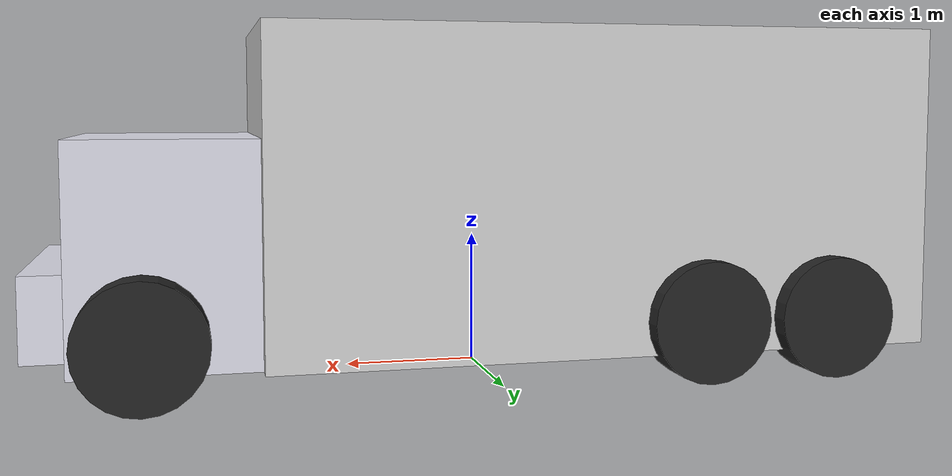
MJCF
<mujoco>
  <!-- Delivery truck model -->
  <asset>
    <material name="truck_cab" rgba="0.9 0.9 0.95 1"/>
    <material name="truck_cargo" rgba="0.85 0.85 0.85 1"/>
    <material name="truck_wheel" rgba="0.15 0.15 0.15 1"/>
  </asset>

  <worldbody>
    <body name="truck_root">
      <!-- Cab -->
      <geom name="truck_cab" type="box" size="1.0 1.0 0.8" pos="2.0 0 1.0" material="truck_cab"/>
      <geom name="truck_hood" type="box" size="0.5 0.9 0.3" pos="2.8 0 0.6" material="truck_cab"/>

      <!-- Cargo area -->
      <geom name="truck_cargo" type="box" size="2.5 1.15 1.2" pos="-0.8 0 1.4" material="truck_cargo"/>

      <!-- Wheels -->
      <geom name="wheel_fl" type="cylinder" size="0.45 0.15" pos="2.5 1.15 0.45" euler="90 0 0" material="truck_wheel"/>
      <geom name="wheel_fr" type="cylinder" size="0.45 0.15" pos="2.5 -1.15 0.45" euler="90 0 0" material="truck_wheel"/>
      <geom name="wheel_rl1" type="cylinder" size="0.45 0.15" pos="-1.5 1.15 0.45" euler="90 0 0" material="truck_wheel"/>
      <geom name="wheel_rr1" type="cylinder" size="0.45 0.15" pos="-1.5 -1.15 0.45" euler="90 0 0" material="truck_wheel"/>
      <geom name="wheel_rl2" type="cylinder" size="0.45 0.15" pos="-2.5 1.15 0.45" euler="90 0 0" material="truck_wheel"/>
      <geom name="wheel_rr2" type="cylinder" size="0.45 0.15" pos="-2.5 -1.15 0.45" euler="90 0 0" material="truck_wheel"/>
    </body>
  </worldbody>
</mujoco>
